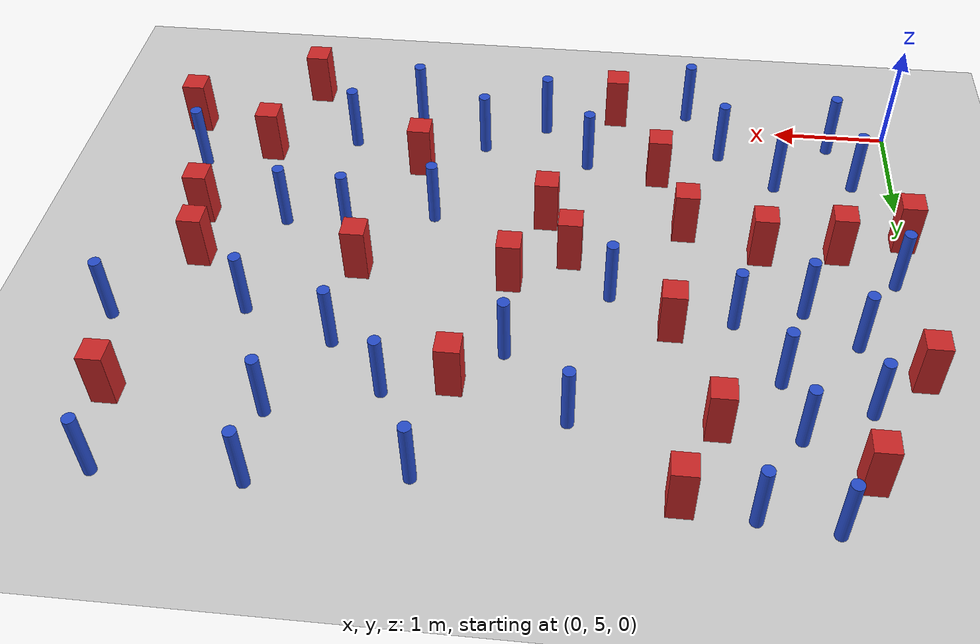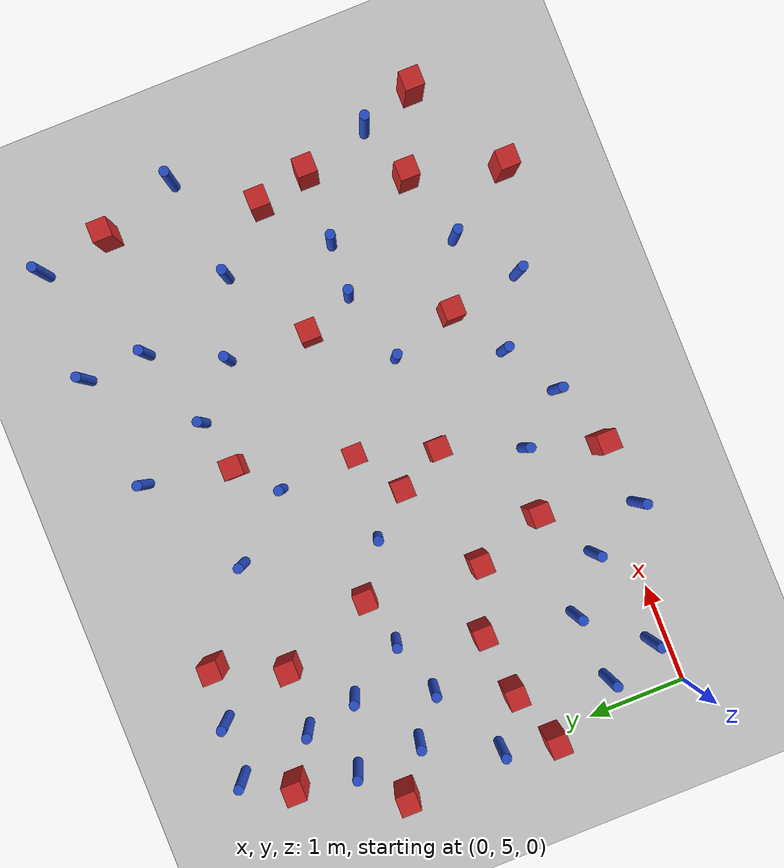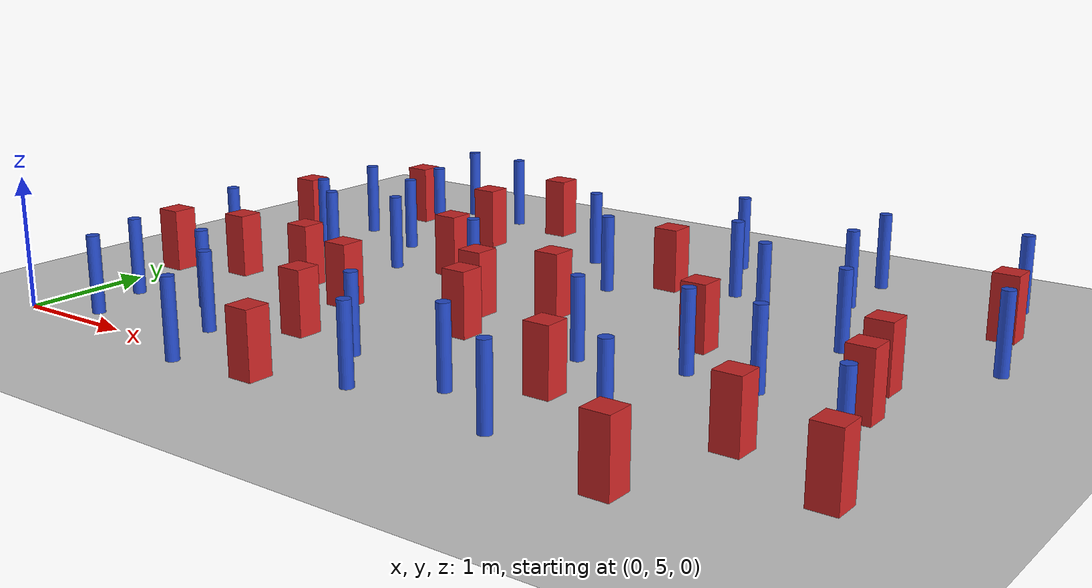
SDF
<sdf version="1.6">
 <world name="default">
  <model name="ground_plane">
   <static>1</static>
   <link name="link">
    <collision name="collision">
     <geometry><plane><normal>0 0 1</normal><size>100 100</size></plane></geometry>
     <surface><friction><ode><mu>100</mu><mu2>50</mu2></ode></friction></surface>
    </collision>
    <visual name="visual">
     <cast_shadows>0</cast_shadows>
     <geometry><plane><normal>0 0 1</normal><size>100 100</size></plane></geometry>
     <material>
      <ambient>1.0 1.0 1.0 1.0</ambient>
      <diffuse>0.8 0.8 0.8 1.0</diffuse>
      <specular>0.01 0.01 0.01 1.000000</specular>
     </material>
    </visual>
   </link>
  </model>
  <model name="pole_obstacle4">
   <static>true</static>
   <pose>6.25062392108 5.93523951194 2.88873142074e-08 -9.90536690842e-09 4.60219948965e-07 -1.20965994976e-07</pose>
   <link name="link">
    <pose>0 0 0.3 0 -0 0</pose>
    <inertial>
     <mass>1</mass>
     <inertia><ixx>0.145833</ixx><ixy>0</ixy><ixz>0</ixz><iyy>0.145833</iyy><iyz>0</iyz><izz>0.125</izz></inertia>
    </inertial>
    <collision name="collision">
     <geometry><cylinder><radius>0.05</radius><length>.6</length></cylinder></geometry>
    </collision>
    <visual name="visual">
     <geometry><cylinder><radius>0.05</radius><length>.6</length></cylinder></geometry>
     <material>
      <script><name>Gazebo/Blue</name><uri>file://media/materials/scripts/gazebo.material</uri></script>
     </material>
    </visual>
   </link>
  </model>
  <model name="square_post_obstacle13">
   <static>true</static>
   <pose>1.60740175641 8.58705689888 8.22691968438e-08 7.22125133819e-06 -7.54495500217e-07 2.29674213826e-05</pose>
   <link name="link">
    <pose>0 0 0.25 0 -0 0</pose>
    <inertial>
     <mass>100</mass>
     <inertia>
      <ixx>0.166667</ixx>
      <ixy>0</ixy>
      <ixz>0</ixz>
      <iyy>0.166667</iyy>
      <iyz>0</iyz>
      <izz>0.166667</izz>
     </inertia>
    </inertial>
    <collision name="collision"><geometry><box><size>.2 .2 .5</size></box></geometry></collision>
    <visual name="visual">
     <geometry><box><size>.2 .2 .5</size></box></geometry>
     <material>
      <script><name>Gazebo/Red</name><uri>file://media/materials/scripts/gazebo.material</uri></script>
     </material>
    </visual>
   </link>
  </model>
  <model name="square_post_obstacle14">
   <static>true</static>
   <pose>6.05142016758 6.63428384098 8.22691968438e-08 7.2212513382e-06 -7.54495500217e-07 2.29674213826e-05</pose>
   <link name="link">
    <pose>0 0 0.25 0 -0 0</pose>
    <inertial>
     <mass>100</mass>
     <inertia>
      <ixx>0.166667</ixx>
      <ixy>0</ixy>
      <ixz>0</ixz>
      <iyy>0.166667</iyy>
      <iyz>0</iyz>
      <izz>0.166667</izz>
     </inertia>
    </inertial>
    <collision name="collision"><geometry><box><size>.2 .2 .5</size></box></geometry></collision>
    <visual name="visual">
     <geometry><box><size>.2 .2 .5</size></box></geometry>
     <material>
      <script><name>Gazebo/Red</name><uri>file://media/materials/scripts/gazebo.material</uri></script>
     </material>
    </visual>
   </link>
  </model>
  <model name="pole_obstacle10">
   <static>true</static>
   <pose>6.08239028829 9.38743284664 2.88873142074e-08 -9.9053668967e-09 4.60219948993e-07 -1.20965994957e-07</pose>
   <link name="link">
    <pose>0 0 0.3 0 -0 0</pose>
    <inertial>
     <mass>1</mass>
     <inertia><ixx>0.145833</ixx><ixy>0</ixy><ixz>0</ixz><iyy>0.145833</iyy><iyz>0</iyz><izz>0.125</izz></inertia>
    </inertial>
    <collision name="collision">
     <geometry><cylinder><radius>0.05</radius><length>.6</length></cylinder></geometry>
    </collision>
    <visual name="visual">
     <geometry><cylinder><radius>0.05</radius><length>.6</length></cylinder></geometry>
     <material>
      <script><name>Gazebo/Blue</name><uri>file://media/materials/scripts/gazebo.material</uri></script>
     </material>
    </visual>
   </link>
  </model>
  <model name="pole_obstacle15">
   <static>true</static>
   <pose>4.03688961754 6.48515556852 2.88873142074e-08 -9.90536690822e-09 4.60219948966e-07 -1.20965994976e-07</pose>
   <link name="link">
    <pose>0 0 0.3 0 -0 0</pose>
    <inertial>
     <mass>1</mass>
     <inertia><ixx>0.145833</ixx><ixy>0</ixy><ixz>0</ixz><iyy>0.145833</iyy><iyz>0</iyz><izz>0.125</izz></inertia>
    </inertial>
    <collision name="collision">
     <geometry><cylinder><radius>0.05</radius><length>.6</length></cylinder></geometry>
    </collision>
    <visual name="visual">
     <geometry><cylinder><radius>0.05</radius><length>.6</length></cylinder></geometry>
     <material>
      <script><name>Gazebo/Blue</name><uri>file://media/materials/scripts/gazebo.material</uri></script>
     </material>
    </visual>
   </link>
  </model>
  <model name="square_post_obstacle29">
   <static>true</static>
   <pose>1.96092399388 7.64124585685 8.22691968438e-08 7.2212513382e-06 -7.54495500217e-07 2.29674213826e-05</pose>
   <link name="link">
    <pose>0 0 0.25 0 -0 0</pose>
    <inertial>
     <mass>100</mass>
     <inertia>
      <ixx>0.166667</ixx>
      <ixy>0</ixy>
      <ixz>0</ixz>
      <iyy>0.166667</iyy>
      <iyz>0</iyz>
      <izz>0.166667</izz>
     </inertia>
    </inertial>
    <collision name="collision"><geometry><box><size>.2 .2 .5</size></box></geometry></collision>
    <visual name="visual">
     <geometry><box><size>.2 .2 .5</size></box></geometry>
     <material>
      <script><name>Gazebo/Red</name><uri>file://media/materials/scripts/gazebo.material</uri></script>
     </material>
    </visual>
   </link>
  </model>
  <model name="square_post_obstacle31">
   <static>true</static>
   <pose>2.51714546498 4.9107897604 8.22691968438e-08 7.2212513382e-06 -7.54495500217e-07 2.29674213826e-05</pose>
   <link name="link">
    <pose>0 0 0.25 0 -0 0</pose>
    <inertial>
     <mass>100</mass>
     <inertia>
      <ixx>0.166667</ixx>
      <ixy>0</ixy>
      <ixz>0</ixz>
      <iyy>0.166667</iyy>
      <iyz>0</iyz>
      <izz>0.166667</izz>
     </inertia>
    </inertial>
    <collision name="collision"><geometry><box><size>.2 .2 .5</size></box></geometry></collision>
    <visual name="visual">
     <geometry><box><size>.2 .2 .5</size></box></geometry>
     <material>
      <script><name>Gazebo/Red</name><uri>file://media/materials/scripts/gazebo.material</uri></script>
     </material>
    </visual>
   </link>
  </model>
  <model name="pole_obstacle25">
   <static>true</static>
   <pose>3.16579255804 5.1446258756 2.88873142074e-08 -9.90536689859e-09 4.60219948989e-07 -1.20965994961e-07</pose>
   <link name="link">
    <pose>0 0 0.3 0 -0 0</pose>
    <inertial>
     <mass>1</mass>
     <inertia><ixx>0.145833</ixx><ixy>0</ixy><ixz>0</ixz><iyy>0.145833</iyy><iyz>0</iyz><izz>0.125</izz></inertia>
    </inertial>
    <collision name="collision">
     <geometry><cylinder><radius>0.05</radius><length>.6</length></cylinder></geometry>
    </collision>
    <visual name="visual">
     <geometry><cylinder><radius>0.05</radius><length>.6</length></cylinder></geometry>
     <material>
      <script><name>Gazebo/Blue</name><uri>file://media/materials/scripts/gazebo.material</uri></script>
     </material>
    </visual>
   </link>
  </model>
  <model name="pole_obstacle26">
   <static>true</static>
   <pose>3.25200990936 8.0047037829 2.88873142074e-08 -9.90536689889e-09 4.60219948988e-07 -1.2096599496e-07</pose>
   <link name="link">
    <pose>0 0 0.3 0 -0 0</pose>
    <inertial>
     <mass>1</mass>
     <inertia><ixx>0.145833</ixx><ixy>0</ixy><ixz>0</ixz><iyy>0.145833</iyy><iyz>0</iyz><izz>0.125</izz></inertia>
    </inertial>
    <collision name="collision">
     <geometry><cylinder><radius>0.05</radius><length>.6</length></cylinder></geometry>
    </collision>
    <visual name="visual">
     <geometry><cylinder><radius>0.05</radius><length>.6</length></cylinder></geometry>
     <material>
      <script><name>Gazebo/Blue</name><uri>file://media/materials/scripts/gazebo.material</uri></script>
     </material>
    </visual>
   </link>
  </model>
  <model name="pole_obstacle28">
   <static>true</static>
   <pose>0.351171055243 5.71879454964 2.88873142074e-08 -9.90536689683e-09 4.60219948993e-07 -1.20965994957e-07</pose>
   <link name="link">
    <pose>0 0 0.3 0 -0 0</pose>
    <inertial>
     <mass>1</mass>
     <inertia><ixx>0.145833</ixx><ixy>0</ixy><ixz>0</ixz><iyy>0.145833</iyy><iyz>0</iyz><izz>0.125</izz></inertia>
    </inertial>
    <collision name="collision">
     <geometry><cylinder><radius>0.05</radius><length>.6</length></cylinder></geometry>
    </collision>
    <visual name="visual">
     <geometry><cylinder><radius>0.05</radius><length>.6</length></cylinder></geometry>
     <material>
      <script><name>Gazebo/Blue</name><uri>file://media/materials/scripts/gazebo.material</uri></script>
     </material>
    </visual>
   </link>
  </model>
  <model name="pole_obstacle33">
   <static>true</static>
   <pose>3.7899568839 9.22745315971 2.88873142074e-08 -9.90536692318e-09 4.6021994893e-07 -1.20965994988e-07</pose>
   <link name="link">
    <pose>0 0 0.3 0 -0 0</pose>
    <inertial>
     <mass>1</mass>
     <inertia><ixx>0.145833</ixx><ixy>0</ixy><ixz>0</ixz><iyy>0.145833</iyy><iyz>0</iyz><izz>0.125</izz></inertia>
    </inertial>
    <collision name="collision">
     <geometry><cylinder><radius>0.05</radius><length>.6</length></cylinder></geometry>
    </collision>
    <visual name="visual">
     <geometry><cylinder><radius>0.05</radius><length>.6</length></cylinder></geometry>
     <material>
      <script><name>Gazebo/Blue</name><uri>file://media/materials/scripts/gazebo.material</uri></script>
     </material>
    </visual>
   </link>
  </model>
  <model name="pole_obstacle35">
   <static>true</static>
   <pose>0.775003731208 9.39430453857 2.88873142074e-08 -9.90536690779e-09 4.60219948967e-07 -1.20965994975e-07</pose>
   <link name="link">
    <pose>0 0 0.3 0 -0 0</pose>
    <inertial>
     <mass>1</mass>
     <inertia><ixx>0.145833</ixx><ixy>0</ixy><ixz>0</ixz><iyy>0.145833</iyy><iyz>0</iyz><izz>0.125</izz></inertia>
    </inertial>
    <collision name="collision">
     <geometry><cylinder><radius>0.05</radius><length>.6</length></cylinder></geometry>
    </collision>
    <visual name="visual">
     <geometry><cylinder><radius>0.05</radius><length>.6</length></cylinder></geometry>
     <material>
      <script><name>Gazebo/Blue</name><uri>file://media/materials/scripts/gazebo.material</uri></script>
     </material>
    </visual>
   </link>
  </model>
  <model name="pole_obstacle38">
   <static>true</static>
   <pose>4.92263622136 5.51287538201 2.88873142074e-08 -9.90536690842e-09 4.60219948965e-07 -1.20965994976e-07</pose>
   <link name="link">
    <pose>0 0 0.3 0 -0 0</pose>
    <inertial>
     <mass>1</mass>
     <inertia><ixx>0.145833</ixx><ixy>0</ixy><ixz>0</ixz><iyy>0.145833</iyy><iyz>0</iyz><izz>0.125</izz></inertia>
    </inertial>
    <collision name="collision">
     <geometry><cylinder><radius>0.05</radius><length>.6</length></cylinder></geometry>
    </collision>
    <visual name="visual">
     <geometry><cylinder><radius>0.05</radius><length>.6</length></cylinder></geometry>
     <material>
      <script><name>Gazebo/Blue</name><uri>file://media/materials/scripts/gazebo.material</uri></script>
     </material>
    </visual>
   </link>
  </model>
  <model name="square_post_obstacle41">
   <static>true</static>
   <pose>1.21902497302 6.70314681089 8.22691968438e-08 7.2212513382e-06 -7.54495500217e-07 2.29674213826e-05</pose>
   <link name="link">
    <pose>0 0 0.25 0 -0 0</pose>
    <inertial>
     <mass>100</mass>
     <inertia>
      <ixx>0.166667</ixx>
      <ixy>0</ixy>
      <ixz>0</ixz>
      <iyy>0.166667</iyy>
      <iyz>0</iyz>
      <izz>0.166667</izz>
     </inertia>
    </inertial>
    <collision name="collision"><geometry><box><size>.2 .2 .5</size></box></geometry></collision>
    <visual name="visual">
     <geometry><box><size>.2 .2 .5</size></box></geometry>
     <material>
      <script><name>Gazebo/Red</name><uri>file://media/materials/scripts/gazebo.material</uri></script>
     </material>
    </visual>
   </link>
  </model>
  <model name="square_post_obstacle51">
   <static>true</static>
   <pose>3.62441299886 8.35543509499 8.22691968438e-08 7.22125133819e-06 -7.54495500217e-07 2.29674213826e-05</pose>
   <link name="link">
    <pose>0 0 0.25 0 -0 0</pose>
    <inertial>
     <mass>100</mass>
     <inertia>
      <ixx>0.166667</ixx>
      <ixy>0</ixy>
      <ixz>0</ixz>
      <iyy>0.166667</iyy>
      <iyz>0</iyz>
      <izz>0.166667</izz>
     </inertia>
    </inertial>
    <collision name="collision"><geometry><box><size>.2 .2 .5</size></box></geometry></collision>
    <visual name="visual">
     <geometry><box><size>.2 .2 .5</size></box></geometry>
     <material>
      <script><name>Gazebo/Red</name><uri>file://media/materials/scripts/gazebo.material</uri></script>
     </material>
    </visual>
   </link>
  </model>
  <model name="square_post_obstacle53">
   <static>true</static>
   <pose>5.40251894343 4.80079059802 8.22691968438e-08 7.2212513382e-06 -7.54495500217e-07 2.29674213826e-05</pose>
   <link name="link">
    <pose>0 0 0.25 0 -0 0</pose>
    <inertial>
     <mass>100</mass>
     <inertia>
      <ixx>0.166667</ixx>
      <ixy>0</ixy>
      <ixz>0</ixz>
      <iyy>0.166667</iyy>
      <iyz>0</iyz>
      <izz>0.166667</izz>
     </inertia>
    </inertial>
    <collision name="collision"><geometry><box><size>.2 .2 .5</size></box></geometry></collision>
    <visual name="visual">
     <geometry><box><size>.2 .2 .5</size></box></geometry>
     <material>
      <script><name>Gazebo/Red</name><uri>file://media/materials/scripts/gazebo.material</uri></script>
     </material>
    </visual>
   </link>
  </model>
  <model name="pole_obstacle53">
   <static>true</static>
   <pose>1.45786186009 7.5126399277 2.88873142074e-08 -9.90536689852e-09 4.60219948989e-07 -1.2096599496e-07</pose>
   <link name="link">
    <pose>0 0 0.3 0 -0 0</pose>
    <inertial>
     <mass>1</mass>
     <inertia><ixx>0.145833</ixx><ixy>0</ixy><ixz>0</ixz><iyy>0.145833</iyy><iyz>0</iyz><izz>0.125</izz></inertia>
    </inertial>
    <collision name="collision">
     <geometry><cylinder><radius>0.05</radius><length>.6</length></cylinder></geometry>
    </collision>
    <visual name="visual">
     <geometry><cylinder><radius>0.05</radius><length>.6</length></cylinder></geometry>
     <material>
      <script><name>Gazebo/Blue</name><uri>file://media/materials/scripts/gazebo.material</uri></script>
     </material>
    </visual>
   </link>
  </model>
  <model name="pole_obstacle54">
   <static>true</static>
   <pose>4.14288564063 8.47687909228 2.88873142074e-08 -9.9053668967e-09 4.60219948993e-07 -1.20965994957e-07</pose>
   <link name="link">
    <pose>0 0 0.3 0 -0 0</pose>
    <inertial>
     <mass>1</mass>
     <inertia><ixx>0.145833</ixx><ixy>0</ixy><ixz>0</ixz><iyy>0.145833</iyy><iyz>0</iyz><izz>0.125</izz></inertia>
    </inertial>
    <collision name="collision">
     <geometry><cylinder><radius>0.05</radius><length>.6</length></cylinder></geometry>
    </collision>
    <visual name="visual">
     <geometry><cylinder><radius>0.05</radius><length>.6</length></cylinder></geometry>
     <material>
      <script><name>Gazebo/Blue</name><uri>file://media/materials/scripts/gazebo.material</uri></script>
     </material>
    </visual>
   </link>
  </model>
  <model name="pole_obstacle55">
   <static>true</static>
   <pose>4.97924118706 8.7440290734 2.88873142074e-08 -9.9053668967e-09 4.60219948993e-07 -1.20965994957e-07</pose>
   <link name="link">
    <pose>0 0 0.3 0 -0 0</pose>
    <inertial>
     <mass>1</mass>
     <inertia><ixx>0.145833</ixx><ixy>0</ixy><ixz>0</ixz><iyy>0.145833</iyy><iyz>0</iyz><izz>0.125</izz></inertia>
    </inertial>
    <collision name="collision">
     <geometry><cylinder><radius>0.05</radius><length>.6</length></cylinder></geometry>
    </collision>
    <visual name="visual">
     <geometry><cylinder><radius>0.05</radius><length>.6</length></cylinder></geometry>
     <material>
      <script><name>Gazebo/Blue</name><uri>file://media/materials/scripts/gazebo.material</uri></script>
     </material>
    </visual>
   </link>
  </model>
  <model name="square_post_obstacle63">
   <static>true</static>
   <pose>3.29728585964 7.21730366256 8.22691968438e-08 7.2212513382e-06 -7.54495500217e-07 2.29674213826e-05</pose>
   <link name="link">
    <pose>0 0 0.25 0 -0 0</pose>
    <inertial>
     <mass>100</mass>
     <inertia>
      <ixx>0.166667</ixx>
      <ixy>0</ixy>
      <ixz>0</ixz>
      <iyy>0.166667</iyy>
      <iyz>0</iyz>
      <izz>0.166667</izz>
     </inertia>
    </inertial>
    <collision name="collision"><geometry><box><size>.2 .2 .5</size></box></geometry></collision>
    <visual name="visual">
     <geometry><box><size>.2 .2 .5</size></box></geometry>
     <material>
      <script><name>Gazebo/Red</name><uri>file://media/materials/scripts/gazebo.material</uri></script>
     </material>
    </visual>
   </link>
  </model>
  <model name="pole_obstacle74">
   <static>true</static>
   <pose>0.89164059397 7.33952672366 2.88873142074e-08 -9.90536689661e-09 4.60219948993e-07 -1.20965994957e-07</pose>
   <link name="link">
    <pose>0 0 0.3 0 -0 0</pose>
    <inertial>
     <mass>1</mass>
     <inertia><ixx>0.145833</ixx><ixy>0</ixy><ixz>0</ixz><iyy>0.145833</iyy><iyz>0</iyz><izz>0.125</izz></inertia>
    </inertial>
    <collision name="collision">
     <geometry><cylinder><radius>0.05</radius><length>.6</length></cylinder></geometry>
    </collision>
    <visual name="visual">
     <geometry><cylinder><radius>0.05</radius><length>.6</length></cylinder></geometry>
     <material>
      <script><name>Gazebo/Blue</name><uri>file://media/materials/scripts/gazebo.material</uri></script>
     </material>
    </visual>
   </link>
  </model>
  <model name="pole_obstacle76">
   <static>true</static>
   <pose>0.112289512491 6.94191018716 2.88873142074e-08 -9.90536689742e-09 4.60219948992e-07 -1.2096599496e-07</pose>
   <link name="link">
    <pose>0 0 0.3 0 -0 0</pose>
    <inertial>
     <mass>1</mass>
     <inertia><ixx>0.145833</ixx><ixy>0</ixy><ixz>0</ixz><iyy>0.145833</iyy><iyz>0</iyz><izz>0.125</izz></inertia>
    </inertial>
    <collision name="collision">
     <geometry><cylinder><radius>0.05</radius><length>.6</length></cylinder></geometry>
    </collision>
    <visual name="visual">
     <geometry><cylinder><radius>0.05</radius><length>.6</length></cylinder></geometry>
     <material>
      <script><name>Gazebo/Blue</name><uri>file://media/materials/scripts/gazebo.material</uri></script>
     </material>
    </visual>
   </link>
  </model>
  <model name="pole_obstacle81">
   <static>true</static>
   <pose>1.34829978055 9.34208371026 2.88873142074e-08 -9.90536690474e-09 4.60219948974e-07 -1.2096599497e-07</pose>
   <link name="link">
    <pose>0 0 0.3 0 -0 0</pose>
    <inertial>
     <mass>1</mass>
     <inertia><ixx>0.145833</ixx><ixy>0</ixy><ixz>0</ixz><iyy>0.145833</iyy><iyz>0</iyz><izz>0.125</izz></inertia>
    </inertial>
    <collision name="collision">
     <geometry><cylinder><radius>0.05</radius><length>.6</length></cylinder></geometry>
    </collision>
    <visual name="visual">
     <geometry><cylinder><radius>0.05</radius><length>.6</length></cylinder></geometry>
     <material>
      <script><name>Gazebo/Blue</name><uri>file://media/materials/scripts/gazebo.material</uri></script>
     </material>
    </visual>
   </link>
  </model>
  <model name="square_post_obstacle81">
   <static>true</static>
   <pose>4.25370816084 5.81993179814 8.22691968438e-08 7.2212513382e-06 -7.54495500217e-07 2.29674213826e-05</pose>
   <link name="link">
    <pose>0 0 0.25 0 -0 0</pose>
    <inertial>
     <mass>100</mass>
     <inertia>
      <ixx>0.166667</ixx>
      <ixy>0</ixy>
      <ixz>0</ixz>
      <iyy>0.166667</iyy>
      <iyz>0</iyz>
      <izz>0.166667</izz>
     </inertia>
    </inertial>
    <collision name="collision"><geometry><box><size>.2 .2 .5</size></box></geometry></collision>
    <visual name="visual">
     <geometry><box><size>.2 .2 .5</size></box></geometry>
     <material>
      <script><name>Gazebo/Red</name><uri>file://media/materials/scripts/gazebo.material</uri></script>
     </material>
    </visual>
   </link>
  </model>
  <model name="pole_obstacle90">
   <static>true</static>
   <pose>4.6235431869 8.01604617667 2.88873142074e-08 -9.90536690354e-09 4.60219948977e-07 -1.20965994967e-07</pose>
   <link name="link">
    <pose>0 0 0.3 0 -0 0</pose>
    <inertial>
     <mass>1</mass>
     <inertia><ixx>0.145833</ixx><ixy>0</ixy><ixz>0</ixz><iyy>0.145833</iyy><iyz>0</iyz><izz>0.125</izz></inertia>
    </inertial>
    <collision name="collision">
     <geometry><cylinder><radius>0.05</radius><length>.6</length></cylinder></geometry>
    </collision>
    <visual name="visual">
     <geometry><cylinder><radius>0.05</radius><length>.6</length></cylinder></geometry>
     <material>
      <script><name>Gazebo/Blue</name><uri>file://media/materials/scripts/gazebo.material</uri></script>
     </material>
    </visual>
   </link>
  </model>
  <model name="pole_obstacle95">
   <static>true</static>
   <pose>5.39492867554 7.73087636008 2.88873142074e-08 -9.90536690842e-09 4.60219948965e-07 -1.20965994976e-07</pose>
   <link name="link">
    <pose>0 0 0.3 0 -0 0</pose>
    <inertial>
     <mass>1</mass>
     <inertia><ixx>0.145833</ixx><ixy>0</ixy><ixz>0</ixz><iyy>0.145833</iyy><iyz>0</iyz><izz>0.125</izz></inertia>
    </inertial>
    <collision name="collision">
     <geometry><cylinder><radius>0.05</radius><length>.6</length></cylinder></geometry>
    </collision>
    <visual name="visual">
     <geometry><cylinder><radius>0.05</radius><length>.6</length></cylinder></geometry>
     <material>
      <script><name>Gazebo/Blue</name><uri>file://media/materials/scripts/gazebo.material</uri></script>
     </material>
    </visual>
   </link>
  </model>
  <model name="square_post_obstacle87">
   <static>true</static>
   <pose>1.86391675757 6.47358717025 8.22691968438e-08 7.2212513382e-06 -7.54495500217e-07 2.29674213826e-05</pose>
   <link name="link">
    <pose>0 0 0.25 0 -0 0</pose>
    <inertial>
     <mass>100</mass>
     <inertia>
      <ixx>0.166667</ixx>
      <ixy>0</ixy>
      <ixz>0</ixz>
      <iyy>0.166667</iyy>
      <iyz>0</iyz>
      <izz>0.166667</izz>
     </inertia>
    </inertial>
    <collision name="collision"><geometry><box><size>.2 .2 .5</size></box></geometry></collision>
    <visual name="visual">
     <geometry><box><size>.2 .2 .5</size></box></geometry>
     <material>
      <script><name>Gazebo/Red</name><uri>file://media/materials/scripts/gazebo.material</uri></script>
     </material>
    </visual>
   </link>
  </model>
  <model name="pole_obstacle111">
   <static>true</static>
   <pose>2.71149507821 8.62835247739 2.88873142074e-08 -9.90536692318e-09 4.6021994893e-07 -1.20965994988e-07</pose>
   <link name="link">
    <pose>0 0 0.3 0 -0 0</pose>
    <inertial>
     <mass>1</mass>
     <inertia><ixx>0.145833</ixx><ixy>0</ixy><ixz>0</ixz><iyy>0.145833</iyy><iyz>0</iyz><izz>0.125</izz></inertia>
    </inertial>
    <collision name="collision">
     <geometry><cylinder><radius>0.05</radius><length>.6</length></cylinder></geometry>
    </collision>
    <visual name="visual">
     <geometry><cylinder><radius>0.05</radius><length>.6</length></cylinder></geometry>
     <material>
      <script><name>Gazebo/Blue</name><uri>file://media/materials/scripts/gazebo.material</uri></script>
     </material>
    </visual>
   </link>
  </model>
  <model name="pole_obstacle114">
   <static>true</static>
   <pose>2.46189906596 7.30450411155 2.88873142074e-08 -9.90536689859e-09 4.60219948989e-07 -1.20965994961e-07</pose>
   <link name="link">
    <pose>0 0 0.3 0 -0 0</pose>
    <inertial>
     <mass>1</mass>
     <inertia><ixx>0.145833</ixx><ixy>0</ixy><ixz>0</ixz><iyy>0.145833</iyy><iyz>0</iyz><izz>0.125</izz></inertia>
    </inertial>
    <collision name="collision">
     <geometry><cylinder><radius>0.05</radius><length>.6</length></cylinder></geometry>
    </collision>
    <visual name="visual">
     <geometry><cylinder><radius>0.05</radius><length>.6</length></cylinder></geometry>
     <material>
      <script><name>Gazebo/Blue</name><uri>file://media/materials/scripts/gazebo.material</uri></script>
     </material>
    </visual>
   </link>
  </model>
  <model name="pole_obstacle116">
   <static>true</static>
   <pose>0.439127600806 8.32171813539 2.88873142074e-08 -9.90536691079e-09 4.6021994896e-07 -1.2096599498e-07</pose>
   <link name="link">
    <pose>0 0 0.3 0 -0 0</pose>
    <inertial>
     <mass>1</mass>
     <inertia><ixx>0.145833</ixx><ixy>0</ixy><ixz>0</ixz><iyy>0.145833</iyy><iyz>0</iyz><izz>0.125</izz></inertia>
    </inertial>
    <collision name="collision">
     <geometry><cylinder><radius>0.05</radius><length>.6</length></cylinder></geometry>
    </collision>
    <visual name="visual">
     <geometry><cylinder><radius>0.05</radius><length>.6</length></cylinder></geometry>
     <material>
      <script><name>Gazebo/Blue</name><uri>file://media/materials/scripts/gazebo.material</uri></script>
     </material>
    </visual>
   </link>
  </model>
  <model name="square_post_obstacle104">
   <static>true</static>
   <pose>3.05609129547 6.44041803608 8.22691968438e-08 7.2212513382e-06 -7.54495500217e-07 2.29674213826e-05</pose>
   <link name="link">
    <pose>0 0 0.25 0 -0 0</pose>
    <inertial>
     <mass>100</mass>
     <inertia>
      <ixx>0.166667</ixx>
      <ixy>0</ixy>
      <ixz>0</ixz>
      <iyy>0.166667</iyy>
      <iyz>0</iyz>
      <izz>0.166667</izz>
     </inertia>
    </inertial>
    <collision name="collision"><geometry><box><size>.2 .2 .5</size></box></geometry></collision>
    <visual name="visual">
     <geometry><box><size>.2 .2 .5</size></box></geometry>
     <material>
      <script><name>Gazebo/Red</name><uri>file://media/materials/scripts/gazebo.material</uri></script>
     </material>
    </visual>
   </link>
  </model>
  <model name="pole_obstacle123">
   <static>true</static>
   <pose>0.536753798176 5.19411564982 2.88873142074e-08 -9.90536689714e-09 4.60219948992e-07 -1.20965994957e-07</pose>
   <link name="link">
    <pose>0 0 0.3 0 -0 0</pose>
    <inertial>
     <mass>1</mass>
     <inertia><ixx>0.145833</ixx><ixy>0</ixy><ixz>0</ixz><iyy>0.145833</iyy><iyz>0</iyz><izz>0.125</izz></inertia>
    </inertial>
    <collision name="collision">
     <geometry><cylinder><radius>0.05</radius><length>.6</length></cylinder></geometry>
    </collision>
    <visual name="visual">
     <geometry><cylinder><radius>0.05</radius><length>.6</length></cylinder></geometry>
     <material>
      <script><name>Gazebo/Blue</name><uri>file://media/materials/scripts/gazebo.material</uri></script>
     </material>
    </visual>
   </link>
  </model>
  <model name="pole_obstacle137">
   <static>true</static>
   <pose>4.77587608805 6.68950996147 2.88873142074e-08 -9.90536690842e-09 4.60219948965e-07 -1.20965994976e-07</pose>
   <link name="link">
    <pose>0 0 0.3 0 -0 0</pose>
    <inertial>
     <mass>1</mass>
     <inertia><ixx>0.145833</ixx><ixy>0</ixy><ixz>0</ixz><iyy>0.145833</iyy><iyz>0</iyz><izz>0.125</izz></inertia>
    </inertial>
    <collision name="collision">
     <geometry><cylinder><radius>0.05</radius><length>.6</length></cylinder></geometry>
    </collision>
    <visual name="visual">
     <geometry><cylinder><radius>0.05</radius><length>.6</length></cylinder></geometry>
     <material>
      <script><name>Gazebo/Blue</name><uri>file://media/materials/scripts/gazebo.material</uri></script>
     </material>
    </visual>
   </link>
  </model>
  <model name="square_post_obstacle122">
   <static>true</static>
   <pose>5.93232729432 7.17009740279 8.22691968438e-08 7.2212513382e-06 -7.54495500217e-07 2.29674213826e-05</pose>
   <link name="link">
    <pose>0 0 0.25 0 -0 0</pose>
    <inertial>
     <mass>100</mass>
     <inertia>
      <ixx>0.166667</ixx>
      <ixy>0</ixy>
      <ixz>0</ixz>
      <iyy>0.166667</iyy>
      <iyz>0</iyz>
      <izz>0.166667</izz>
     </inertia>
    </inertial>
    <collision name="collision"><geometry><box><size>.2 .2 .5</size></box></geometry></collision>
    <visual name="visual">
     <geometry><box><size>.2 .2 .5</size></box></geometry>
     <material>
      <script><name>Gazebo/Red</name><uri>file://media/materials/scripts/gazebo.material</uri></script>
     </material>
    </visual>
   </link>
  </model>
  <model name="square_post_obstacle125">
   <static>true</static>
   <pose>0.515150467782 8.94788776732 8.22691968438e-08 7.22125133819e-06 -7.54495500217e-07 2.29674213826e-05</pose>
   <link name="link">
    <pose>0 0 0.25 0 -0 0</pose>
    <inertial>
     <mass>100</mass>
     <inertia>
      <ixx>0.166667</ixx>
      <ixy>0</ixy>
      <ixz>0</ixz>
      <iyy>0.166667</iyy>
      <iyz>0</iyz>
      <izz>0.166667</izz>
     </inertia>
    </inertial>
    <collision name="collision"><geometry><box><size>.2 .2 .5</size></box></geometry></collision>
    <visual name="visual">
     <geometry><box><size>.2 .2 .5</size></box></geometry>
     <material>
      <script><name>Gazebo/Red</name><uri>file://media/materials/scripts/gazebo.material</uri></script>
     </material>
    </visual>
   </link>
  </model>
  <model name="square_post_obstacle128">
   <static>true</static>
   <pose>6.44482042603 5.37302288719 8.22691968438e-08 7.2212513382e-06 -7.54495500217e-07 2.29674213826e-05</pose>
   <link name="link">
    <pose>0 0 0.25 0 -0 0</pose>
    <inertial>
     <mass>100</mass>
     <inertia>
      <ixx>0.166667</ixx>
      <ixy>0</ixy>
      <ixz>0</ixz>
      <iyy>0.166667</iyy>
      <iyz>0</iyz>
      <izz>0.166667</izz>
     </inertia>
    </inertial>
    <collision name="collision"><geometry><box><size>.2 .2 .5</size></box></geometry></collision>
    <visual name="visual">
     <geometry><box><size>.2 .2 .5</size></box></geometry>
     <material>
      <script><name>Gazebo/Red</name><uri>file://media/materials/scripts/gazebo.material</uri></script>
     </material>
    </visual>
   </link>
  </model>
  <model name="square_post_obstacle132">
   <static>true</static>
   <pose>4.57243385021 7.18749339547 8.22691968438e-08 7.2212513382e-06 -7.54495500217e-07 2.29674213826e-05</pose>
   <link name="link">
    <pose>0 0 0.25 0 -0 0</pose>
    <inertial>
     <mass>100</mass>
     <inertia>
      <ixx>0.166667</ixx>
      <ixy>0</ixy>
      <ixz>0</ixz>
      <iyy>0.166667</iyy>
      <iyz>0</iyz>
      <izz>0.166667</izz>
     </inertia>
    </inertial>
    <collision name="collision"><geometry><box><size>.2 .2 .5</size></box></geometry></collision>
    <visual name="visual">
     <geometry><box><size>.2 .2 .5</size></box></geometry>
     <material>
      <script><name>Gazebo/Red</name><uri>file://media/materials/scripts/gazebo.material</uri></script>
     </material>
    </visual>
   </link>
  </model>
  <model name="pole_obstacle151">
   <static>true</static>
   <pose>4.3679364195 5.07064173712 2.88873142074e-08 -9.90536690842e-09 4.60219948965e-07 -1.20965994976e-07</pose>
   <link name="link">
    <pose>0 0 0.3 0 -0 0</pose>
    <inertial>
     <mass>1</mass>
     <inertia><ixx>0.145833</ixx><ixy>0</ixy><ixz>0</ixz><iyy>0.145833</iyy><iyz>0</iyz><izz>0.125</izz></inertia>
    </inertial>
    <collision name="collision">
     <geometry><cylinder><radius>0.05</radius><length>.6</length></cylinder></geometry>
    </collision>
    <visual name="visual">
     <geometry><cylinder><radius>0.05</radius><length>.6</length></cylinder></geometry>
     <material>
      <script><name>Gazebo/Blue</name><uri>file://media/materials/scripts/gazebo.material</uri></script>
     </material>
    </visual>
   </link>
  </model>
  <model name="square_post_obstacle143">
   <static>true</static>
   <pose>5.65982909904 5.73275985543 8.22691968438e-08 7.2212513382e-06 -7.54495500217e-07 2.29674213826e-05</pose>
   <link name="link">
    <pose>0 0 0.25 0 -0 0</pose>
    <inertial>
     <mass>100</mass>
     <inertia>
      <ixx>0.166667</ixx>
      <ixy>0</ixy>
      <ixz>0</ixz>
      <iyy>0.166667</iyy>
      <iyz>0</iyz>
      <izz>0.166667</izz>
     </inertia>
    </inertial>
    <collision name="collision"><geometry><box><size>.2 .2 .5</size></box></geometry></collision>
    <visual name="visual">
     <geometry><box><size>.2 .2 .5</size></box></geometry>
     <material>
      <script><name>Gazebo/Red</name><uri>file://media/materials/scripts/gazebo.material</uri></script>
     </material>
    </visual>
   </link>
  </model>
  <model name="pole_obstacle157">
   <static>true</static>
   <pose>4.95940278046 9.38298455636 2.88873142074e-08 -9.9053668967e-09 4.60219948993e-07 -1.20965994957e-07</pose>
   <link name="link">
    <pose>0 0 0.3 0 -0 0</pose>
    <inertial>
     <mass>1</mass>
     <inertia><ixx>0.145833</ixx><ixy>0</ixy><ixz>0</ixz><iyy>0.145833</iyy><iyz>0</iyz><izz>0.125</izz></inertia>
    </inertial>
    <collision name="collision">
     <geometry><cylinder><radius>0.05</radius><length>.6</length></cylinder></geometry>
    </collision>
    <visual name="visual">
     <geometry><cylinder><radius>0.05</radius><length>.6</length></cylinder></geometry>
     <material>
      <script><name>Gazebo/Blue</name><uri>file://media/materials/scripts/gazebo.material</uri></script>
     </material>
    </visual>
   </link>
  </model>
  <model name="pole_obstacle161">
   <static>true</static>
   <pose>6.458573794 7.89200750527 2.88873142074e-08 -9.90536690842e-09 4.60219948965e-07 -1.20965994976e-07</pose>
   <link name="link">
    <pose>0 0 0.3 0 -0 0</pose>
    <inertial>
     <mass>1</mass>
     <inertia><ixx>0.145833</ixx><ixy>0</ixy><ixz>0</ixz><iyy>0.145833</iyy><iyz>0</iyz><izz>0.125</izz></inertia>
    </inertial>
    <collision name="collision">
     <geometry><cylinder><radius>0.05</radius><length>.6</length></cylinder></geometry>
    </collision>
    <visual name="visual">
     <geometry><cylinder><radius>0.05</radius><length>.6</length></cylinder></geometry>
     <material>
      <script><name>Gazebo/Blue</name><uri>file://media/materials/scripts/gazebo.material</uri></script>
     </material>
    </visual>
   </link>
  </model>
  <model name="square_post_obstacle154">
   <static>true</static>
   <pose>2.10355352297 5.76943180578 8.22691968438e-08 7.2212513382e-06 -7.54495500217e-07 2.29674213826e-05</pose>
   <link name="link">
    <pose>0 0 0.25 0 -0 0</pose>
    <inertial>
     <mass>100</mass>
     <inertia>
      <ixx>0.166667</ixx>
      <ixy>0</ixy>
      <ixz>0</ixz>
      <iyy>0.166667</iyy>
      <iyz>0</iyz>
      <izz>0.166667</izz>
     </inertia>
    </inertial>
    <collision name="collision"><geometry><box><size>.2 .2 .5</size></box></geometry></collision>
    <visual name="visual">
     <geometry><box><size>.2 .2 .5</size></box></geometry>
     <material>
      <script><name>Gazebo/Red</name><uri>file://media/materials/scripts/gazebo.material</uri></script>
     </material>
    </visual>
   </link>
  </model>
  <model name="square_post_obstacle157">
   <static>true</static>
   <pose>1.88041545142 9.27087243415 8.22691968438e-08 7.22125133819e-06 -7.54495500217e-07 2.29674213826e-05</pose>
   <link name="link">
    <pose>0 0 0.25 0 -0 0</pose>
    <inertial>
     <mass>100</mass>
     <inertia>
      <ixx>0.166667</ixx>
      <ixy>0</ixy>
      <ixz>0</ixz>
      <iyy>0.166667</iyy>
      <iyz>0</iyz>
      <izz>0.166667</izz>
     </inertia>
    </inertial>
    <collision name="collision"><geometry><box><size>.2 .2 .5</size></box></geometry></collision>
    <visual name="visual">
     <geometry><box><size>.2 .2 .5</size></box></geometry>
     <material>
      <script><name>Gazebo/Red</name><uri>file://media/materials/scripts/gazebo.material</uri></script>
     </material>
    </visual>
   </link>
  </model>
  <model name="pole_obstacle167">
   <static>true</static>
   <pose>0.479061962342 7.65800041999 2.88873142074e-08 -9.90536689616e-09 4.60219948994e-07 -1.20965994955e-07</pose>
   <link name="link">
    <pose>0 0 0.3 0 -0 0</pose>
    <inertial>
     <mass>1</mass>
     <inertia><ixx>0.145833</ixx><ixy>0</ixy><ixz>0</ixz><iyy>0.145833</iyy><iyz>0</iyz><izz>0.125</izz></inertia>
    </inertial>
    <collision name="collision">
     <geometry><cylinder><radius>0.05</radius><length>.6</length></cylinder></geometry>
    </collision>
    <visual name="visual">
     <geometry><cylinder><radius>0.05</radius><length>.6</length></cylinder></geometry>
     <material>
      <script><name>Gazebo/Blue</name><uri>file://media/materials/scripts/gazebo.material</uri></script>
     </material>
    </visual>
   </link>
  </model>
  <model name="pole_obstacle175">
   <static>true</static>
   <pose>1.10818595861 8.08950364373 2.88873142074e-08 -9.90536690474e-09 4.60219948974e-07 -1.2096599497e-07</pose>
   <link name="link">
    <pose>0 0 0.3 0 -0 0</pose>
    <inertial>
     <mass>1</mass>
     <inertia><ixx>0.145833</ixx><ixy>0</ixy><ixz>0</ixz><iyy>0.145833</iyy><iyz>0</iyz><izz>0.125</izz></inertia>
    </inertial>
    <collision name="collision">
     <geometry><cylinder><radius>0.05</radius><length>.6</length></cylinder></geometry>
    </collision>
    <visual name="visual">
     <geometry><cylinder><radius>0.05</radius><length>.6</length></cylinder></geometry>
     <material>
      <script><name>Gazebo/Blue</name><uri>file://media/materials/scripts/gazebo.material</uri></script>
     </material>
    </visual>
   </link>
  </model>
  <model name="square_post_obstacle167">
   <static>true</static>
   <pose>0.0224539282539 7.96899550067 8.22691968438e-08 7.22125133819e-06 -7.54495500217e-07 2.29674213826e-05</pose>
   <link name="link">
    <pose>0 0 0.25 0 -0 0</pose>
    <inertial>
     <mass>100</mass>
     <inertia>
      <ixx>0.166667</ixx>
      <ixy>0</ixy>
      <ixz>0</ixz>
      <iyy>0.166667</iyy>
      <iyz>0</iyz>
      <izz>0.166667</izz>
     </inertia>
    </inertial>
    <collision name="collision"><geometry><box><size>.2 .2 .5</size></box></geometry></collision>
    <visual name="visual">
     <geometry><box><size>.2 .2 .5</size></box></geometry>
     <material>
      <script><name>Gazebo/Red</name><uri>file://media/materials/scripts/gazebo.material</uri></script>
     </material>
    </visual>
   </link>
  </model>
  <model name="pole_obstacle180">
   <static>true</static>
   <pose>1.84368094278 4.81786389746 2.88873142074e-08 -9.90536689852e-09 4.60219948989e-07 -1.2096599496e-07</pose>
   <link name="link">
    <pose>0 0 0.3 0 -0 0</pose>
    <inertial>
     <mass>1</mass>
     <inertia><ixx>0.145833</ixx><ixy>0</ixy><ixz>0</ixz><iyy>0.145833</iyy><iyz>0</iyz><izz>0.125</izz></inertia>
    </inertial>
    <collision name="collision">
     <geometry><cylinder><radius>0.05</radius><length>.6</length></cylinder></geometry>
    </collision>
    <visual name="visual">
     <geometry><cylinder><radius>0.05</radius><length>.6</length></cylinder></geometry>
     <material>
      <script><name>Gazebo/Blue</name><uri>file://media/materials/scripts/gazebo.material</uri></script>
     </material>
    </visual>
   </link>
  </model>
  <model name="pole_obstacle186">
   <static>true</static>
   <pose>1.54341430271 5.39931867117 2.88873142074e-08 -9.90536689852e-09 4.60219948989e-07 -1.2096599496e-07</pose>
   <link name="link">
    <pose>0 0 0.3 0 -0 0</pose>
    <inertial>
     <mass>1</mass>
     <inertia><ixx>0.145833</ixx><ixy>0</ixy><ixz>0</ixz><iyy>0.145833</iyy><iyz>0</iyz><izz>0.125</izz></inertia>
    </inertial>
    <collision name="collision">
     <geometry><cylinder><radius>0.05</radius><length>.6</length></cylinder></geometry>
    </collision>
    <visual name="visual">
     <geometry><cylinder><radius>0.05</radius><length>.6</length></cylinder></geometry>
     <material>
      <script><name>Gazebo/Blue</name><uri>file://media/materials/scripts/gazebo.material</uri></script>
     </material>
    </visual>
   </link>
  </model>
  <model name="square_post_obstacle181">
   <static>true</static>
   <pose>6.20306015612 8.68289255858 8.22691968438e-08 7.22125133819e-06 -7.54495500217e-07 2.29674213826e-05</pose>
   <link name="link">
    <pose>0 0 0.25 0 -0 0</pose>
    <inertial>
     <mass>100</mass>
     <inertia>
      <ixx>0.166667</ixx>
      <ixy>0</ixy>
      <ixz>0</ixz>
      <iyy>0.166667</iyy>
      <iyz>0</iyz>
      <izz>0.166667</izz>
     </inertia>
    </inertial>
    <collision name="collision"><geometry><box><size>.2 .2 .5</size></box></geometry></collision>
    <visual name="visual">
     <geometry><box><size>.2 .2 .5</size></box></geometry>
     <material>
      <script><name>Gazebo/Red</name><uri>file://media/materials/scripts/gazebo.material</uri></script>
     </material>
    </visual>
   </link>
  </model>
  <model name="square_post_obstacle185">
   <static>true</static>
   <pose>2.82038310388 6.90839771751 8.22691968438e-08 7.2212513382e-06 -7.54495500217e-07 2.29674213826e-05</pose>
   <link name="link">
    <pose>0 0 0.25 0 -0 0</pose>
    <inertial>
     <mass>100</mass>
     <inertia>
      <ixx>0.166667</ixx>
      <ixy>0</ixy>
      <ixz>0</ixz>
      <iyy>0.166667</iyy>
      <iyz>0</iyz>
      <izz>0.166667</izz>
     </inertia>
    </inertial>
    <collision name="collision"><geometry><box><size>.2 .2 .5</size></box></geometry></collision>
    <visual name="visual">
     <geometry><box><size>.2 .2 .5</size></box></geometry>
     <material>
      <script><name>Gazebo/Red</name><uri>file://media/materials/scripts/gazebo.material</uri></script>
     </material>
    </visual>
   </link>
  </model>
  <model name="pole_obstacle194">
   <static>true</static>
   <pose>3.71047839707 5.47588181246 2.88873142074e-08 -9.90536689859e-09 4.60219948989e-07 -1.20965994961e-07</pose>
   <link name="link">
    <pose>0 0 0.3 0 -0 0</pose>
    <inertial>
     <mass>1</mass>
     <inertia><ixx>0.145833</ixx><ixy>0</ixy><ixz>0</ixz><iyy>0.145833</iyy><iyz>0</iyz><izz>0.125</izz></inertia>
    </inertial>
    <collision name="collision">
     <geometry><cylinder><radius>0.05</radius><length>.6</length></cylinder></geometry>
    </collision>
    <visual name="visual">
     <geometry><cylinder><radius>0.05</radius><length>.6</length></cylinder></geometry>
     <material>
      <script><name>Gazebo/Blue</name><uri>file://media/materials/scripts/gazebo.material</uri></script>
     </material>
    </visual>
   </link>
  </model>
  <model name="pole_obstacle205">
   <static>true</static>
   <pose>1.05079763918 5.79016998514 2.88873142074e-08 -9.90536689852e-09 4.60219948989e-07 -1.2096599496e-07</pose>
   <link name="link">
    <pose>0 0 0.3 0 -0 0</pose>
    <inertial>
     <mass>1</mass>
     <inertia><ixx>0.145833</ixx><ixy>0</ixy><ixz>0</ixz><iyy>0.145833</iyy><iyz>0</iyz><izz>0.125</izz></inertia>
    </inertial>
    <collision name="collision">
     <geometry><cylinder><radius>0.05</radius><length>.6</length></cylinder></geometry>
    </collision>
    <visual name="visual">
     <geometry><cylinder><radius>0.05</radius><length>.6</length></cylinder></geometry>
     <material>
      <script><name>Gazebo/Blue</name><uri>file://media/materials/scripts/gazebo.material</uri></script>
     </material>
    </visual>
   </link>
  </model>
  <model name="square_post_obstacle212">
   <static>true</static>
   <pose>0.56855038249 6.62999787408 8.22691968438e-08 7.2212513382e-06 -7.54495500217e-07 2.29674213826e-05</pose>
   <link name="link">
    <pose>0 0 0.25 0 -0 0</pose>
    <inertial>
     <mass>100</mass>
     <inertia>
      <ixx>0.166667</ixx>
      <ixy>0</ixy>
      <ixz>0</ixz>
      <iyy>0.166667</iyy>
      <iyz>0</iyz>
      <izz>0.166667</izz>
     </inertia>
    </inertial>
    <collision name="collision"><geometry><box><size>.2 .2 .5</size></box></geometry></collision>
    <visual name="visual">
     <geometry><box><size>.2 .2 .5</size></box></geometry>
     <material>
      <script><name>Gazebo/Red</name><uri>file://media/materials/scripts/gazebo.material</uri></script>
     </material>
    </visual>
   </link>
  </model>
  <model name="square_post_obstacle228">
   <static>true</static>
   <pose>-0.00406362963206 6.42524041609 8.22691968438e-08 7.2212513382e-06 -7.54495500217e-07 2.29674213826e-05</pose>
   <link name="link">
    <pose>0 0 0.25 0 -0 0</pose>
    <inertial>
     <mass>100</mass>
     <inertia>
      <ixx>0.166667</ixx>
      <ixy>0</ixy>
      <ixz>0</ixz>
      <iyy>0.166667</iyy>
      <iyz>0</iyz>
      <izz>0.166667</izz>
     </inertia>
    </inertial>
    <collision name="collision"><geometry><box><size>.2 .2 .5</size></box></geometry></collision>
    <visual name="visual">
     <geometry><box><size>.2 .2 .5</size></box></geometry>
     <material>
      <script><name>Gazebo/Red</name><uri>file://media/materials/scripts/gazebo.material</uri></script>
     </material>
    </visual>
   </link>
  </model>
  <model name="pole_obstacle213">
   <static>true</static>
   <pose>0.985535009133 8.62160002041 2.88873142074e-08 -9.9053669105e-09 4.6021994896e-07 -1.20965994979e-07</pose>
   <link name="link">
    <pose>0 0 0.3 0 -0 0</pose>
    <inertial>
     <mass>1</mass>
     <inertia><ixx>0.145833</ixx><ixy>0</ixy><ixz>0</ixz><iyy>0.145833</iyy><iyz>0</iyz><izz>0.125</izz></inertia>
    </inertial>
    <collision name="collision">
     <geometry><cylinder><radius>0.05</radius><length>.6</length></cylinder></geometry>
    </collision>
    <visual name="visual">
     <geometry><cylinder><radius>0.05</radius><length>.6</length></cylinder></geometry>
     <material>
      <script><name>Gazebo/Blue</name><uri>file://media/materials/scripts/gazebo.material</uri></script>
     </material>
    </visual>
   </link>
  </model>
  <model name="pole_obstacle216">
   <static>true</static>
   <pose>5.32198000913 6.65463002041 2.88873142074e-08 -9.90536690842e-09 4.60219948965e-07 -1.20965994976e-07</pose>
   <link name="link">
    <pose>0 0 0.3 0 -0 0</pose>
    <inertial>
     <mass>1</mass>
     <inertia><ixx>0.145833</ixx><ixy>0</ixy><ixz>0</ixz><iyy>0.145833</iyy><iyz>0</iyz><izz>0.125</izz></inertia>
    </inertial>
    <collision name="collision">
     <geometry><cylinder><radius>0.05</radius><length>.6</length></cylinder></geometry>
    </collision>
    <visual name="visual">
     <geometry><cylinder><radius>0.05</radius><length>.6</length></cylinder></geometry>
     <material>
      <script><name>Gazebo/Blue</name><uri>file://media/materials/scripts/gazebo.material</uri></script>
     </material>
    </visual>
   </link>
  </model>
  <model name="pole_obstacle218">
   <static>true</static>
   <pose>2.74691000913 5.64192002041 2.88873142074e-08 -9.90536692062e-09 4.60219948937e-07 -1.20965994985e-07</pose>
   <link name="link">
    <pose>0 0 0.3 0 -0 0</pose>
    <inertial>
     <mass>1</mass>
     <inertia><ixx>0.145833</ixx><ixy>0</ixy><ixz>0</ixz><iyy>0.145833</iyy><iyz>0</iyz><izz>0.125</izz></inertia>
    </inertial>
    <collision name="collision">
     <geometry><cylinder><radius>0.05</radius><length>.6</length></cylinder></geometry>
    </collision>
    <visual name="visual">
     <geometry><cylinder><radius>0.05</radius><length>.6</length></cylinder></geometry>
     <material>
      <script><name>Gazebo/Blue</name><uri>file://media/materials/scripts/gazebo.material</uri></script>
     </material>
    </visual>
   </link>
  </model>
 </world>
</sdf>
